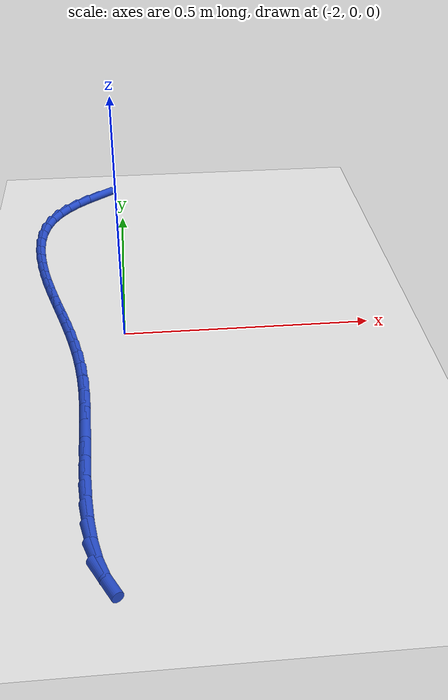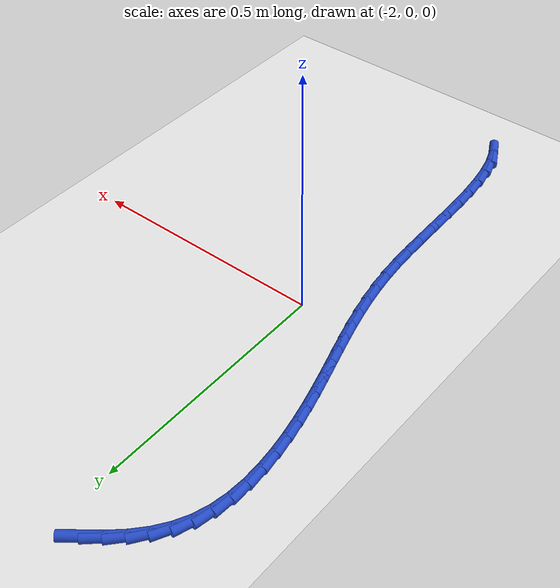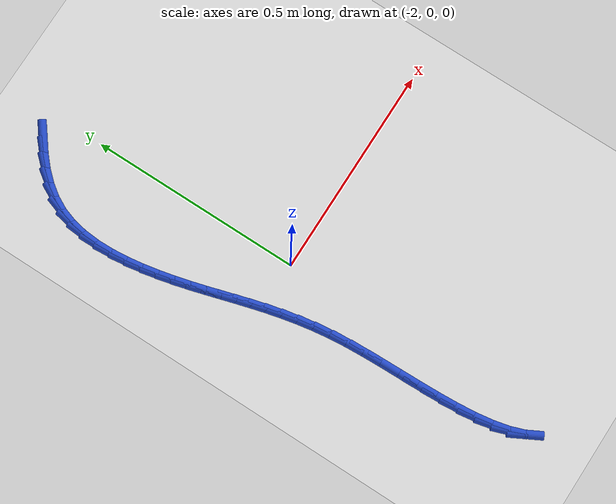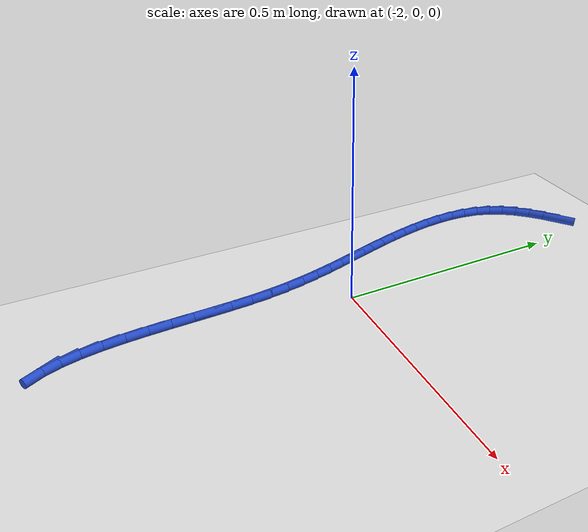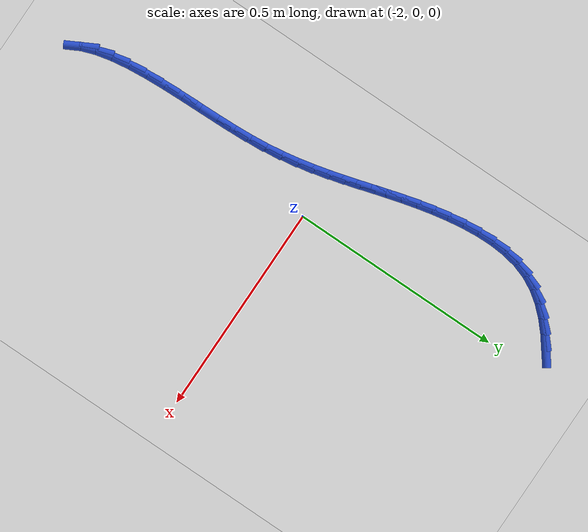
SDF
<sdf version="1.6">
 <world name="default">
  <model name="ground_plane">
   <static>1</static>
   <link name="link">
    <collision name="collision">
     <geometry><plane><normal>0 0 1</normal><size>100 100</size></plane></geometry>
     <surface><friction><ode><mu>100</mu><mu2>50</mu2></ode></friction></surface>
    </collision>
    <visual name="visual">
     <cast_shadows>0</cast_shadows>
     <geometry><plane><normal>0 0 1</normal><size>100 100</size></plane></geometry>
     <material>
      <script><uri>file://media/materials/scripts/gazebo.material</uri><name>Gazebo/WhiteGlow</name></script>
     </material>
    </visual>
   </link>
  </model>
  <model name="line">
   <link name="link_84">
    <pose>-2.057633685553135 0.612850248499618 0.01 0 1.57 0.6547747847410307</pose>
    <collision name="collision">
     <geometry><cylinder><radius>0.01</radius><length>0.08</length></cylinder></geometry>
    </collision>
    <visual name="visual">
     <material>
      <script><name>Gazebo/Blue</name><uri>file://media/materials/scripts/gazebo.material</uri></script>
     </material>
     <geometry><cylinder><radius>0.01</radius><length>0.08</length></cylinder></geometry>
    </visual>
   </link>
   <link name="link_85">
    <pose>-2.0866296266013222 0.5905881482679429 0.01 0 1.57 0.7318443168884475</pose>
    <collision name="collision">
     <geometry><cylinder><radius>0.01</radius><length>0.08</length></cylinder></geometry>
    </collision>
    <visual name="visual">
     <material>
      <script><name>Gazebo/Blue</name><uri>file://media/materials/scripts/gazebo.material</uri></script>
     </material>
     <geometry><cylinder><radius>0.01</radius><length>0.08</length></cylinder></geometry>
    </visual>
   </link>
   <link name="link_86">
    <pose>-2.1130158781311024 0.5668868452605159 0.01 0 1.57 0.8300869329106939</pose>
    <collision name="collision">
     <geometry><cylinder><radius>0.01</radius><length>0.08</length></cylinder></geometry>
    </collision>
    <visual name="visual">
     <material>
      <script><name>Gazebo/Blue</name><uri>file://media/materials/scripts/gazebo.material</uri></script>
     </material>
     <geometry><cylinder><radius>0.01</radius><length>0.08</length></cylinder></geometry>
    </visual>
   </link>
   <link name="link_87">
    <pose>-2.136271474381976 0.5414539716034693 0.01 0 1.57 0.9507406072452128</pose>
    <collision name="collision">
     <geometry><cylinder><radius>0.01</radius><length>0.08</length></cylinder></geometry>
    </collision>
    <visual name="visual">
     <material>
      <script><name>Gazebo/Blue</name><uri>file://media/materials/scripts/gazebo.material</uri></script>
     </material>
     <geometry><cylinder><radius>0.01</radius><length>0.08</length></cylinder></geometry>
    </visual>
   </link>
   <link name="link_88">
    <pose>-2.155875449593444 0.5139971594229357 0.01 0 1.57 1.0926166286455754</pose>
    <collision name="collision">
     <geometry><cylinder><radius>0.01</radius><length>0.08</length></cylinder></geometry>
    </collision>
    <visual name="visual">
     <material>
      <script><name>Gazebo/Blue</name><uri>file://media/materials/scripts/gazebo.material</uri></script>
     </material>
     <geometry><cylinder><radius>0.01</radius><length>0.08</length></cylinder></geometry>
    </visual>
   </link>
   <link name="link_89">
    <pose>-2.171306838005003 0.4842240408450481 0.01 0 1.57 1.2482541403633356</pose>
    <collision name="collision">
     <geometry><cylinder><radius>0.01</radius><length>0.08</length></cylinder></geometry>
    </collision>
    <visual name="visual">
     <material>
      <script><name>Gazebo/Blue</name><uri>file://media/materials/scripts/gazebo.material</uri></script>
     </material>
     <geometry><cylinder><radius>0.01</radius><length>0.08</length></cylinder></geometry>
    </visual>
   </link>
   <link name="link_90">
    <pose>-2.1821111183971076 0.451896527187294 0.01 0 1.57 1.3884711478757645</pose>
    <collision name="collision">
     <geometry><cylinder><radius>0.01</radius><length>0.08</length></cylinder></geometry>
    </collision>
    <visual name="visual">
     <material>
      <script><name>Gazebo/Blue</name><uri>file://media/materials/scripts/gazebo.material</uri></script>
     </material>
     <geometry><cylinder><radius>0.01</radius><length>0.08</length></cylinder></geometry>
    </visual>
   </link>
   <link name="link_91">
    <pose>-2.1884877831157326 0.41731079980595165 0.01 0 1.57 1.5013706939514042</pose>
    <collision name="collision">
     <geometry><cylinder><radius>0.01</radius><length>0.08</length></cylinder></geometry>
    </collision>
    <visual name="visual">
     <material>
      <script><name>Gazebo/Blue</name><uri>file://media/materials/scripts/gazebo.material</uri></script>
     </material>
     <geometry><cylinder><radius>0.01</radius><length>0.08</length></cylinder></geometry>
    </visual>
   </link>
   <link name="link_92">
    <pose>-2.1910080999583275 0.3810667470373207 0.01 0 1.57 -1.5504105108434267</pose>
    <collision name="collision">
     <geometry><cylinder><radius>0.01</radius><length>0.08</length></cylinder></geometry>
    </collision>
    <visual name="visual">
     <material>
      <script><name>Gazebo/Blue</name><uri>file://media/materials/scripts/gazebo.material</uri></script>
     </material>
     <geometry><cylinder><radius>0.01</radius><length>0.08</length></cylinder></geometry>
    </visual>
   </link>
   <link name="link_93">
    <pose>-2.1902476243198334 0.34376775979776836 0.01 0 1.57 -1.4792472828799177</pose>
    <collision name="collision">
     <geometry><cylinder><radius>0.01</radius><length>0.08</length></cylinder></geometry>
    </collision>
    <visual name="visual">
     <material>
      <script><name>Gazebo/Blue</name><uri>file://media/materials/scripts/gazebo.material</uri></script>
     </material>
     <geometry><cylinder><radius>0.01</radius><length>0.08</length></cylinder></geometry>
    </visual>
   </link>
   <link name="link_94">
    <pose>-2.186781911595188 0.30601722900366024 0.01 0 1.57 -1.4230616965220273</pose>
    <collision name="collision">
     <geometry><cylinder><radius>0.01</radius><length>0.08</length></cylinder></geometry>
    </collision>
    <visual name="visual">
     <material>
      <script><name>Gazebo/Blue</name><uri>file://media/materials/scripts/gazebo.material</uri></script>
     </material>
     <geometry><cylinder><radius>0.01</radius><length>0.08</length></cylinder></geometry>
    </visual>
   </link>
   <link name="link_95">
    <pose>-2.181186517179331 0.2684185455713622 0.01 0 1.57 -1.3791270994229485</pose>
    <collision name="collision">
     <geometry><cylinder><radius>0.01</radius><length>0.08</length></cylinder></geometry>
    </collision>
    <visual name="visual">
     <material>
      <script><name>Gazebo/Blue</name><uri>file://media/materials/scripts/gazebo.material</uri></script>
     </material>
     <geometry><cylinder><radius>0.01</radius><length>0.08</length></cylinder></geometry>
    </visual>
   </link>
   <link name="link_96">
    <pose>-2.1740369964672026 0.23157510041724125 0.01 0 1.57 -1.3451658361055732</pose>
    <collision name="collision">
     <geometry><cylinder><radius>0.01</radius><length>0.08</length></cylinder></geometry>
    </collision>
    <visual name="visual">
     <material>
      <script><name>Gazebo/Blue</name><uri>file://media/materials/scripts/gazebo.material</uri></script>
     </material>
     <geometry><cylinder><radius>0.01</radius><length>0.08</length></cylinder></geometry>
    </visual>
   </link>
   <link name="link_97">
    <pose>-2.16586598308476 0.19597760308458093 0.01 0 1.57 -1.3183229983172218</pose>
    <collision name="collision">
     <geometry><cylinder><radius>0.01</radius><length>0.08</length></cylinder></geometry>
    </collision>
    <visual name="visual">
     <material>
      <script><name>Gazebo/Blue</name><uri>file://media/materials/scripts/gazebo.material</uri></script>
     </material>
     <geometry><cylinder><radius>0.01</radius><length>0.08</length></cylinder></geometry>
    </visual>
   </link>
   <link name="link_98">
    <pose>-2.15697221902162 0.16150273365420284 0.01 0 1.57 -1.298734382962595</pose>
    <collision name="collision">
     <geometry><cylinder><radius>0.01</radius><length>0.08</length></cylinder></geometry>
    </collision>
    <visual name="visual">
     <material>
      <script><name>Gazebo/Blue</name><uri>file://media/materials/scripts/gazebo.material</uri></script>
     </material>
     <geometry><cylinder><radius>0.01</radius><length>0.08</length></cylinder></geometry>
    </visual>
   </link>
   <link name="link_99">
    <pose>-2.147575166753805 0.1278190418185199 0.01 0 1.57 -1.2872638163737122</pose>
    <collision name="collision">
     <geometry><cylinder><radius>0.01</radius><length>0.08</length></cylinder></geometry>
    </collision>
    <visual name="visual">
     <material>
      <script><name>Gazebo/Blue</name><uri>file://media/materials/scripts/gazebo.material</uri></script>
     </material>
     <geometry><cylinder><radius>0.01</radius><length>0.08</length></cylinder></geometry>
    </visual>
   </link>
   <link name="link_100">
    <pose>-2.137894224942322 0.09459490973809634 0.01 0 1.57 -1.284431805679277</pose>
    <collision name="collision">
     <geometry><cylinder><radius>0.01</radius><length>0.08</length></cylinder></geometry>
    </collision>
    <visual name="visual">
     <material>
      <script><name>Gazebo/Blue</name><uri>file://media/materials/scripts/gazebo.material</uri></script>
     </material>
     <geometry><cylinder><radius>0.01</radius><length>0.08</length></cylinder></geometry>
    </visual>
   </link>
   <link name="link_101">
    <pose>-2.1281487922481794 0.061498719573496494 0.01 0 1.57 -1.2903802051336588</pose>
    <collision name="collision">
     <geometry><cylinder><radius>0.01</radius><length>0.08</length></cylinder></geometry>
    </collision>
    <visual name="visual">
     <material>
      <script><name>Gazebo/Blue</name><uri>file://media/materials/scripts/gazebo.material</uri></script>
     </material>
     <geometry><cylinder><radius>0.01</radius><length>0.08</length></cylinder></geometry>
    </visual>
   </link>
   <link name="link_102">
    <pose>-2.118558267332386 0.028198853485285832 0.01 0 1.57 -1.3048620991882725</pose>
    <collision name="collision">
     <geometry><cylinder><radius>0.01</radius><length>0.08</length></cylinder></geometry>
    </collision>
    <visual name="visual">
     <material>
      <script><name>Gazebo/Blue</name><uri>file://media/materials/scripts/gazebo.material</uri></script>
     </material>
     <geometry><cylinder><radius>0.01</radius><length>0.08</length></cylinder></geometry>
    </visual>
   </link>
   <link name="link_103">
    <pose>-2.1093420488559484 -0.005636306365971386 0.01 0 1.57 -1.3272557471923832</pose>
    <collision name="collision">
     <geometry><cylinder><radius>0.01</radius><length>0.08</length></cylinder></geometry>
    </collision>
    <visual name="visual">
     <material>
      <script><name>Gazebo/Blue</name><uri>file://media/materials/scripts/gazebo.material</uri></script>
     </material>
     <geometry><cylinder><radius>0.01</radius><length>0.08</length></cylinder></geometry>
    </visual>
   </link>
   <link name="link_104">
    <pose>-2.1007195354798776 -0.04033837781971044 0.01 0 1.57 -1.3566044894482965</pose>
    <collision name="collision">
     <geometry><cylinder><radius>0.01</radius><length>0.08</length></cylinder></geometry>
    </collision>
    <visual name="visual">
     <material>
      <script><name>Gazebo/Blue</name><uri>file://media/materials/scripts/gazebo.material</uri></script>
     </material>
     <geometry><cylinder><radius>0.01</radius><length>0.08</length></cylinder></geometry>
    </visual>
   </link>
   <link name="link_105">
    <pose>-2.0929101258651794 -0.07623897871536661 0.01 0 1.57 -1.3916847105736123</pose>
    <collision name="collision">
     <geometry><cylinder><radius>0.01</radius><length>0.08</length></cylinder></geometry>
    </collision>
    <visual name="visual">
     <material>
      <script><name>Gazebo/Blue</name><uri>file://media/materials/scripts/gazebo.material</uri></script>
     </material>
     <geometry><cylinder><radius>0.01</radius><length>0.08</length></cylinder></geometry>
    </visual>
   </link>
   <link name="link_106">
    <pose>-2.0861332186728627 -0.11366972689237617 0.01 0 1.57 -1.431100020019355</pose>
    <collision name="collision">
     <geometry><cylinder><radius>0.01</radius><length>0.08</length></cylinder></geometry>
    </collision>
    <visual name="visual">
     <material>
      <script><name>Gazebo/Blue</name><uri>file://media/materials/scripts/gazebo.material</uri></script>
     </material>
     <geometry><cylinder><radius>0.01</radius><length>0.08</length></cylinder></geometry>
    </visual>
   </link>
   <link name="link_107">
    <pose>-2.080608212563936 -0.15296224019017263 0.01 0 1.57 -1.4733401952396994</pose>
    <collision name="collision">
     <geometry><cylinder><radius>0.01</radius><length>0.08</length></cylinder></geometry>
    </collision>
    <visual name="visual">
     <material>
      <script><name>Gazebo/Blue</name><uri>file://media/materials/scripts/gazebo.material</uri></script>
     </material>
     <geometry><cylinder><radius>0.01</radius><length>0.08</length></cylinder></geometry>
    </visual>
   </link>
   <link name="link_108">
    <pose>-2.0765525763040227 -0.1944454011018131 0.01 0 1.57 -1.5114023325282726</pose>
    <collision name="collision">
     <geometry><cylinder><radius>0.01</radius><length>0.08</length></cylinder></geometry>
    </collision>
    <visual name="visual">
     <material>
      <script><name>Gazebo/Blue</name><uri>file://media/materials/scripts/gazebo.material</uri></script>
     </material>
     <geometry><cylinder><radius>0.01</radius><length>0.08</length></cylinder></geometry>
    </visual>
   </link>
   <link name="link_109">
    <pose>-2.073955262871058 -0.23812420418453412 0.01 0 1.57 -1.5356497587730125</pose>
    <collision name="collision">
     <geometry><cylinder><radius>0.01</radius><length>0.08</length></cylinder></geometry>
    </collision>
    <visual name="visual">
     <material>
      <script><name>Gazebo/Blue</name><uri>file://media/materials/scripts/gazebo.material</uri></script>
     </material>
     <geometry><cylinder><radius>0.01</radius><length>0.08</length></cylinder></geometry>
    </visual>
   </link>
   <link name="link_110">
    <pose>-2.072364078568213 -0.28337838266318377 0.01 0 1.57 -1.547228700977921</pose>
    <collision name="collision">
     <geometry><cylinder><radius>0.01</radius><length>0.08</length></cylinder></geometry>
    </collision>
    <visual name="visual">
     <material>
      <script><name>Gazebo/Blue</name><uri>file://media/materials/scripts/gazebo.material</uri></script>
     </material>
     <geometry><cylinder><radius>0.01</radius><length>0.08</length></cylinder></geometry>
    </visual>
   </link>
   <link name="link_111">
    <pose>-2.071276514722527 -0.3295163555924835 0.01 0 1.57 -1.547350425540798</pose>
    <collision name="collision">
     <geometry><cylinder><radius>0.01</radius><length>0.08</length></cylinder></geometry>
    </collision>
    <visual name="visual">
     <material>
      <script><name>Gazebo/Blue</name><uri>file://media/materials/scripts/gazebo.material</uri></script>
     </material>
     <geometry><cylinder><radius>0.01</radius><length>0.08</length></cylinder></geometry>
    </visual>
   </link>
   <link name="link_112">
    <pose>-2.070190062661042 -0.3758465420271561 0.01 0 1.57 -1.5361643013509123</pose>
    <collision name="collision">
     <geometry><cylinder><radius>0.01</radius><length>0.08</length></cylinder></geometry>
    </collision>
    <visual name="visual">
     <material>
      <script><name>Gazebo/Blue</name><uri>file://media/materials/scripts/gazebo.material</uri></script>
     </material>
     <geometry><cylinder><radius>0.01</radius><length>0.08</length></cylinder></geometry>
    </visual>
   </link>
   <link name="link_113">
    <pose>-2.068602213710797 -0.4216773610219207 0.01 0 1.57 -1.5128022466732025</pose>
    <collision name="collision">
     <geometry><cylinder><radius>0.01</radius><length>0.08</length></cylinder></geometry>
    </collision>
    <visual name="visual">
     <material>
      <script><name>Gazebo/Blue</name><uri>file://media/materials/scripts/gazebo.material</uri></script>
     </material>
     <geometry><cylinder><radius>0.01</radius><length>0.08</length></cylinder></geometry>
    </visual>
   </link>
   <link name="link_114">
    <pose>-2.066010459198833 -0.4663172316315001 0.01 0 1.57 -1.475241088004876</pose>
    <collision name="collision">
     <geometry><cylinder><radius>0.01</radius><length>0.08</length></cylinder></geometry>
    </collision>
    <visual name="visual">
     <material>
      <script><name>Gazebo/Blue</name><uri>file://media/materials/scripts/gazebo.material</uri></script>
     </material>
     <geometry><cylinder><radius>0.01</radius><length>0.08</length></cylinder></geometry>
    </visual>
   </link>
   <link name="link_115">
    <pose>-2.0619122904521907 -0.5090745729106155 0.01 0 1.57 -1.4199694383035404</pose>
    <collision name="collision">
     <geometry><cylinder><radius>0.01</radius><length>0.08</length></cylinder></geometry>
    </collision>
    <visual name="visual">
     <material>
      <script><name>Gazebo/Blue</name><uri>file://media/materials/scripts/gazebo.material</uri></script>
     </material>
     <geometry><cylinder><radius>0.01</radius><length>0.08</length></cylinder></geometry>
    </visual>
   </link>
   <link name="link_116">
    <pose>-2.05580519879791 -0.5492578039139886 0.01 0 1.57 -1.341450579327038</pose>
    <collision name="collision">
     <geometry><cylinder><radius>0.01</radius><length>0.08</length></cylinder></geometry>
    </collision>
    <visual name="visual">
     <material>
      <script><name>Gazebo/Blue</name><uri>file://media/materials/scripts/gazebo.material</uri></script>
     </material>
     <geometry><cylinder><radius>0.01</radius><length>0.08</length></cylinder></geometry>
    </visual>
   </link>
   <link name="link_117">
    <pose>-2.0471866755630317 -0.5861753436963411 0.01 0 1.57 -1.231519148136012</pose>
    <collision name="collision">
     <geometry><cylinder><radius>0.01</radius><length>0.08</length></cylinder></geometry>
    </collision>
    <visual name="visual">
     <material>
      <script><name>Gazebo/Blue</name><uri>file://media/materials/scripts/gazebo.material</uri></script>
     </material>
     <geometry><cylinder><radius>0.01</radius><length>0.08</length></cylinder></geometry>
    </visual>
   </link>
   <link name="link_118">
    <pose>-2.035554212074596 -0.6191356113123941 0.01 0 1.57 -1.0794790065723223</pose>
    <collision name="collision">
     <geometry><cylinder><radius>0.01</radius><length>0.08</length></cylinder></geometry>
    </collision>
    <visual name="visual">
     <material>
      <script><name>Gazebo/Blue</name><uri>file://media/materials/scripts/gazebo.material</uri></script>
     </material>
     <geometry><cylinder><radius>0.01</radius><length>0.08</length></cylinder></geometry>
    </visual>
   </link>
  </model>
 </world>
</sdf>
